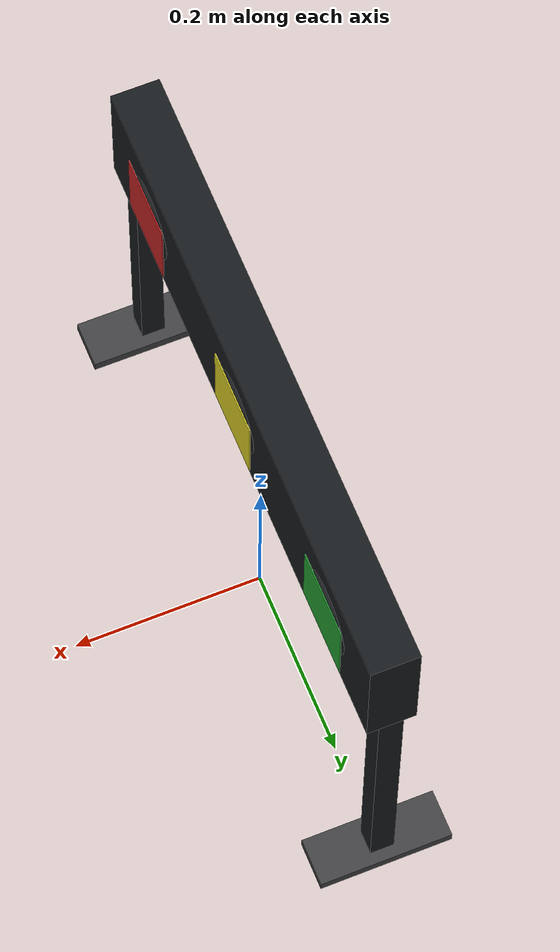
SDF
<?xml version="1.0"?>
<sdf version="1.7">
  <model name="traffic_light_h">
    <!-- 按官方尺寸生成, 见 tools/setup_traffic_lights.py 顶部说明 -->
    <static>false</static>
    <self_collide>false</self_collide>
    <link name="base">
      <gravity>false</gravity>
      <inertial><pose>0 0 0.410 0 0 0</pose><mass>8</mass><inertia><ixx>0.009</ixx><ixy>0</ixy><ixz>0</ixz><iyy>0.139</iyy><iyz>0</iyz><izz>0.143</izz></inertia></inertial>
      <visual name="housing"><pose>0 0 0.410 0 0 0</pose><geometry><box><size>0.050 0.640 0.140</size></box></geometry><material><ambient>0.090 0.102 0.110 1.00</ambient><diffuse>0.090 0.102 0.110 1.00</diffuse></material></visual>
      <collision name="housing_c"><pose>0 0 0.410 0 0 0</pose><geometry><box><size>0.050 0.640 0.140</size></box></geometry></collision>
      <visual name="post0"><pose>0 -0.307 0.170 0 0 0</pose><geometry><box><size>0.025 0.025 0.340</size></box></geometry><material><ambient>0.090 0.102 0.110 1.00</ambient><diffuse>0.090 0.102 0.110 1.00</diffuse></material></visual>
      <collision name="post0_c"><pose>0 -0.307 0.170 0 0 0</pose><geometry><box><size>0.025 0.025 0.340</size></box></geometry><surface><friction><ode><mu>5.0</mu><mu2>5.0</mu2></ode></friction></surface></collision>
      <visual name="foot0"><pose>0 -0.307 0.006 0 0 0</pose><geometry><box><size>0.140 0.050 0.012</size></box></geometry><material><ambient>0.25 0.25 0.26 1</ambient><diffuse>0.25 0.25 0.26 1</diffuse></material></visual>
      <collision name="foot0_c"><pose>0 -0.307 0.006 0 0 0</pose><geometry><box><size>0.140 0.050 0.012</size></box></geometry><surface><friction><ode><mu>5.0</mu><mu2>5.0</mu2></ode></friction></surface></collision>
      <visual name="post1"><pose>0 0.307 0.170 0 0 0</pose><geometry><box><size>0.025 0.025 0.340</size></box></geometry><material><ambient>0.090 0.102 0.110 1.00</ambient><diffuse>0.090 0.102 0.110 1.00</diffuse></material></visual>
      <collision name="post1_c"><pose>0 0.307 0.170 0 0 0</pose><geometry><box><size>0.025 0.025 0.340</size></box></geometry><surface><friction><ode><mu>5.0</mu><mu2>5.0</mu2></ode></friction></surface></collision>
      <visual name="foot1"><pose>0 0.307 0.006 0 0 0</pose><geometry><box><size>0.140 0.050 0.012</size></box></geometry><material><ambient>0.25 0.25 0.26 1</ambient><diffuse>0.25 0.25 0.26 1</diffuse></material></visual>
      <collision name="foot1_c"><pose>0 0.307 0.006 0 0 0</pose><geometry><box><size>0.140 0.050 0.012</size></box></geometry><surface><friction><ode><mu>5.0</mu><mu2>5.0</mu2></ode></friction></surface></collision>
      <visual name="lens_red"><pose>0.0255 -0.220 0.410 0 1.5708 0</pose><geometry><cylinder><radius>0.0425</radius><length>0.0060</length></cylinder></geometry><material><ambient>0.090 0.102 0.110 1.00</ambient><diffuse>0.090 0.102 0.110 1.00</diffuse></material></visual>
      <visual name="lensface_red"><pose>0.0291 -0.220 0.410 0 0 0</pose><geometry><box><size>0.0012 0.0860 0.0860</size></box></geometry><material><script><uri>model://traffic_light_h/materials/scripts</uri><uri>model://traffic_light_h/materials/textures</uri><name>LightLens/red_off</name></script></material></visual>
      <visual name="lens_yellow"><pose>0.0255 0.000 0.410 0 1.5708 0</pose><geometry><cylinder><radius>0.0425</radius><length>0.0060</length></cylinder></geometry><material><ambient>0.090 0.102 0.110 1.00</ambient><diffuse>0.090 0.102 0.110 1.00</diffuse></material></visual>
      <visual name="lensface_yellow"><pose>0.0291 0.000 0.410 0 0 0</pose><geometry><box><size>0.0012 0.0860 0.0860</size></box></geometry><material><script><uri>model://traffic_light_h/materials/scripts</uri><uri>model://traffic_light_h/materials/textures</uri><name>LightLens/yellow_off</name></script></material></visual>
      <visual name="lens_green"><pose>0.0255 0.220 0.410 0 1.5708 0</pose><geometry><cylinder><radius>0.0425</radius><length>0.0060</length></cylinder></geometry><material><ambient>0.090 0.102 0.110 1.00</ambient><diffuse>0.090 0.102 0.110 1.00</diffuse></material></visual>
      <visual name="lensface_green"><pose>0.0291 0.220 0.410 0 0 0</pose><geometry><box><size>0.0012 0.0860 0.0860</size></box></geometry><material><script><uri>model://traffic_light_h/materials/scripts</uri><uri>model://traffic_light_h/materials/textures</uri><name>LightLens/green_off</name></script></material></visual>
    </link>
    <link name="lamp_red"><gravity>false</gravity><pose>0.0000 -0.220 0.410 0 0 0</pose><inertial><mass>0.02</mass><inertia><ixx>1e-5</ixx><ixy>0</ixy><ixz>0</ixz><iyy>1e-5</iyy><iyz>0</iyz><izz>1e-5</izz></inertia></inertial><visual name="lamp"><pose>0 0 0 0 1.5708 0</pose><geometry><cylinder><radius>0.0425</radius><length>0.0040</length></cylinder></geometry><material><ambient>0.969 0.227 0.086 1.00</ambient><diffuse>0.969 0.227 0.086 1.00</diffuse><emissive>0.969 0.227 0.086 1.00</emissive></material></visual><visual name="lampface"><pose>0.0026 0 0 0 0 0</pose><geometry><box><size>0.0012 0.0860 0.0860</size></box></geometry><material><script><uri>model://traffic_light_h/materials/scripts</uri><uri>model://traffic_light_h/materials/textures</uri><name>LightLamp/red_on</name></script></material></visual></link>
    <joint name="j_red" type="prismatic"><parent>base</parent><child>lamp_red</child><pose>0 0 0 0 0 0</pose><axis><xyz>1 0 0</xyz><limit><lower>0.000</lower><upper>0.035</upper><effort>1</effort><velocity>1</velocity></limit></axis></joint>
    <link name="lamp_yellow"><gravity>false</gravity><pose>0.0000 0.000 0.410 0 0 0</pose><inertial><mass>0.02</mass><inertia><ixx>1e-5</ixx><ixy>0</ixy><ixz>0</ixz><iyy>1e-5</iyy><iyz>0</iyz><izz>1e-5</izz></inertia></inertial><visual name="lamp"><pose>0 0 0 0 1.5708 0</pose><geometry><cylinder><radius>0.0425</radius><length>0.0040</length></cylinder></geometry><material><ambient>0.988 0.976 0.188 1.00</ambient><diffuse>0.988 0.976 0.188 1.00</diffuse><emissive>0.988 0.976 0.188 1.00</emissive></material></visual><visual name="lampface"><pose>0.0026 0 0 0 0 0</pose><geometry><box><size>0.0012 0.0860 0.0860</size></box></geometry><material><script><uri>model://traffic_light_h/materials/scripts</uri><uri>model://traffic_light_h/materials/textures</uri><name>LightLamp/yellow_on</name></script></material></visual></link>
    <joint name="j_yellow" type="prismatic"><parent>base</parent><child>lamp_yellow</child><pose>0 0 0 0 0 0</pose><axis><xyz>1 0 0</xyz><limit><lower>0.000</lower><upper>0.035</upper><effort>1</effort><velocity>1</velocity></limit></axis></joint>
    <link name="lamp_green"><gravity>false</gravity><pose>0.0000 0.220 0.410 0 0 0</pose><inertial><mass>0.02</mass><inertia><ixx>1e-5</ixx><ixy>0</ixy><ixz>0</ixz><iyy>1e-5</iyy><iyz>0</iyz><izz>1e-5</izz></inertia></inertial><visual name="lamp"><pose>0 0 0 0 1.5708 0</pose><geometry><cylinder><radius>0.0425</radius><length>0.0040</length></cylinder></geometry><material><ambient>0.086 0.941 0.529 1.00</ambient><diffuse>0.086 0.941 0.529 1.00</diffuse><emissive>0.086 0.941 0.529 1.00</emissive></material></visual><visual name="lampface"><pose>0.0026 0 0 0 0 0</pose><geometry><box><size>0.0012 0.0860 0.0860</size></box></geometry><material><script><uri>model://traffic_light_h/materials/scripts</uri><uri>model://traffic_light_h/materials/textures</uri><name>LightLamp/green_on</name></script></material></visual></link>
    <joint name="j_green" type="prismatic"><parent>base</parent><child>lamp_green</child><pose>0 0 0 0 0 0</pose><axis><xyz>1 0 0</xyz><limit><lower>0.000</lower><upper>0.035</upper><effort>1</effort><velocity>1</velocity></limit></axis></joint>
  </model>
</sdf>
